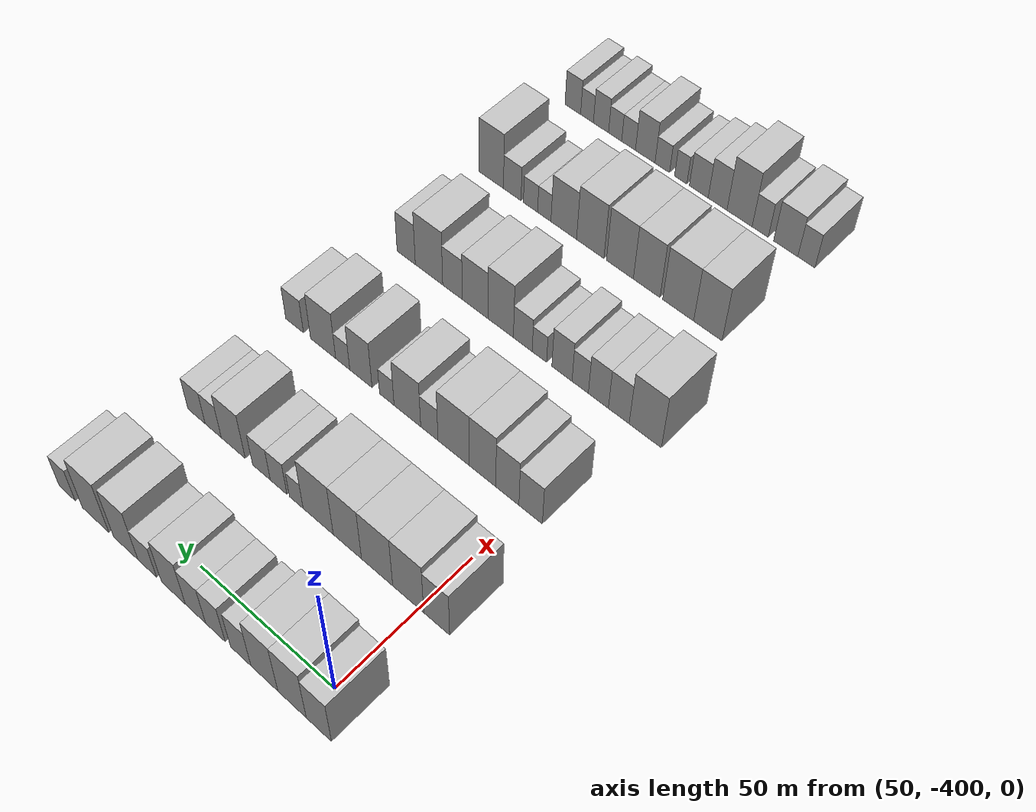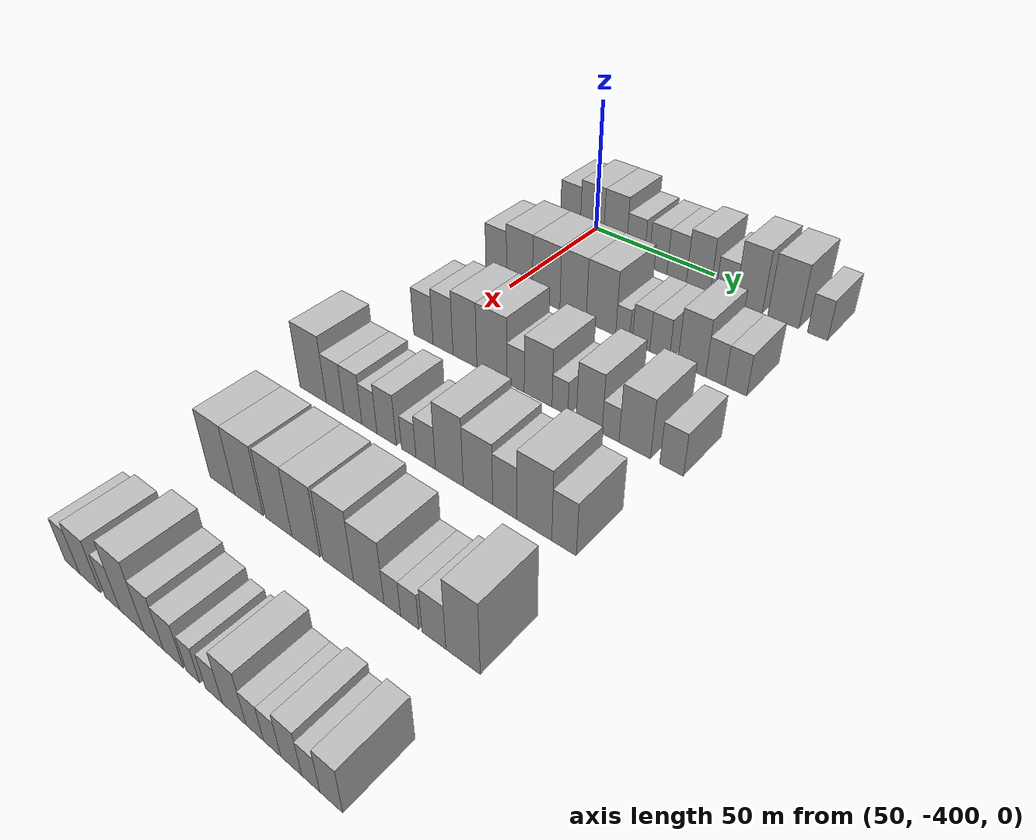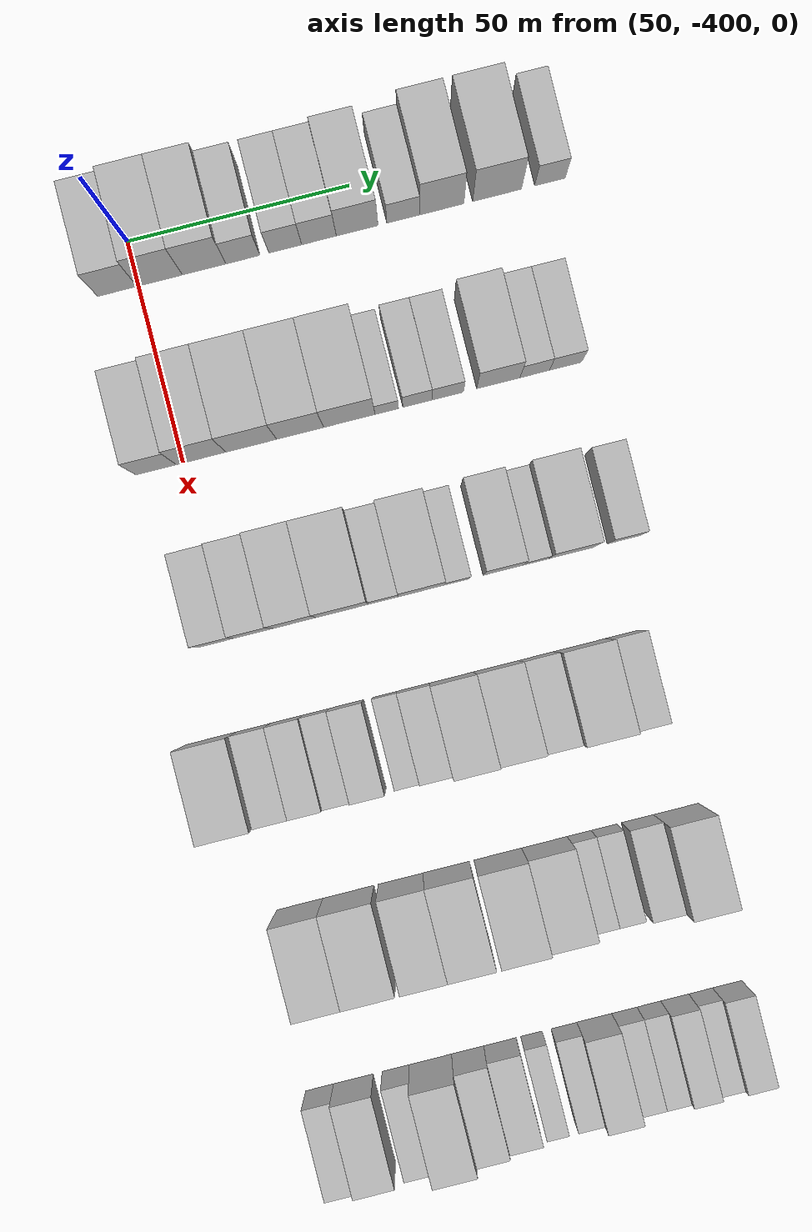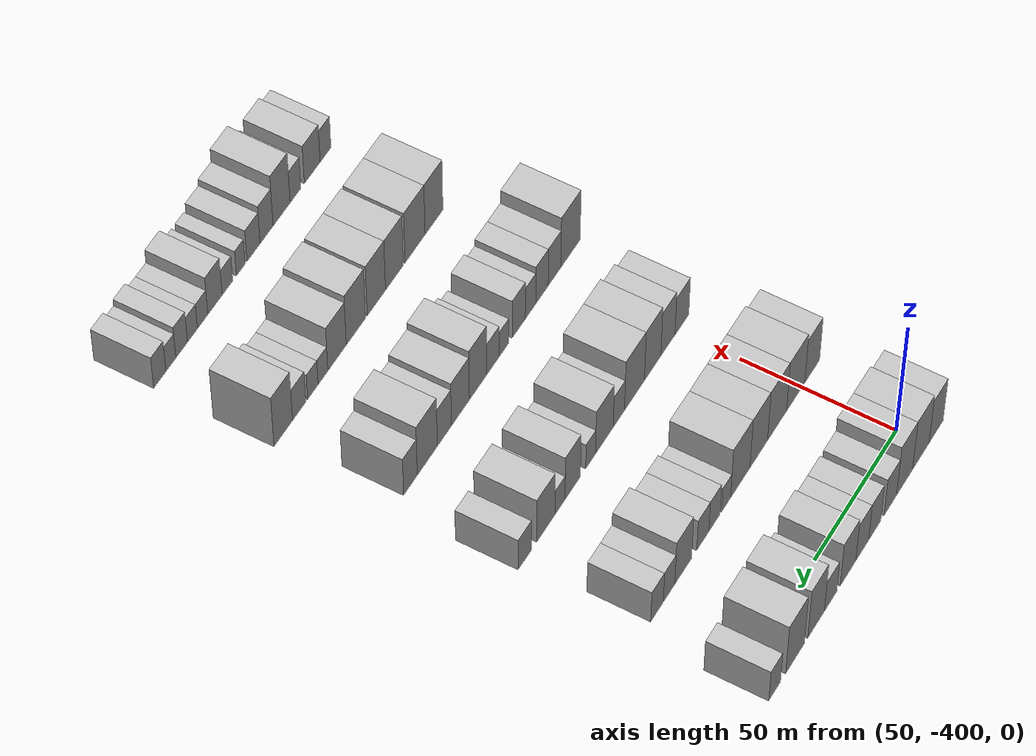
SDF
<sdf version="1.6">
 <world name="default">
  <model name="building_26">
   <static>1</static>
   <pose>50.0000 -404.8417 0 0.000000 0.000000 0.000000</pose>
   <link name="link">
    <pose>0 0 10.50 0 0 0</pose>
    <collision name="collision"><geometry><box><size>20.0000 8.8855 21.0000</size></box></geometry></collision>
    <visual name="visual">
     <cast_shadows>0</cast_shadows>
     <geometry><box><size>20.0000 8.8855 21.0000</size></box></geometry>
     <material>
      <script>
       <uri>model://HANNAS_wall/materials/scripts</uri>
       <uri>model://HANNAS_wall/materials/textures</uri>
       <name>vrc/HANNAS_wall</name>
      </script>
     </material>
    </visual>
   </link>
  </model>
  <model name="building_27">
   <static>1</static>
   <pose>50.0000 -395.2701 0 0.000000 0.000000 0.000000</pose>
   <link name="link">
    <pose>0 0 12.00 0 0 0</pose>
    <collision name="collision"><geometry><box><size>20.0000 10.2577 24.0000</size></box></geometry></collision>
    <visual name="visual">
     <cast_shadows>0</cast_shadows>
     <geometry><box><size>20.0000 10.2577 24.0000</size></box></geometry>
     <material>
      <script>
       <uri>model://HANNAS_wall/materials/scripts</uri>
       <uri>model://HANNAS_wall/materials/textures</uri>
       <name>vrc/HANNAS_wall</name>
      </script>
     </material>
    </visual>
   </link>
  </model>
  <model name="building_28">
   <static>1</static>
   <pose>50.0000 -385.2097 0 0.000000 0.000000 0.000000</pose>
   <link name="link">
    <pose>0 0 12.00 0 0 0</pose>
    <collision name="collision"><geometry><box><size>20.0000 9.8632 24.0000</size></box></geometry></collision>
    <visual name="visual">
     <cast_shadows>0</cast_shadows>
     <geometry><box><size>20.0000 9.8632 24.0000</size></box></geometry>
     <material>
      <script>
       <uri>model://HANNAS_wall/materials/scripts</uri>
       <uri>model://HANNAS_wall/materials/textures</uri>
       <name>vrc/HANNAS_wall</name>
      </script>
     </material>
    </visual>
   </link>
  </model>
  <model name="building_29">
   <static>1</static>
   <pose>50.0000 -376.4399 0 0.000000 0.000000 0.000000</pose>
   <link name="link">
    <pose>0 0 9.00 0 0 0</pose>
    <collision name="collision"><geometry><box><size>20.0000 7.6765 18.0000</size></box></geometry></collision>
    <visual name="visual">
     <cast_shadows>0</cast_shadows>
     <geometry><box><size>20.0000 7.6765 18.0000</size></box></geometry>
     <material>
      <script>
       <uri>model://HANNAS_wall/materials/scripts</uri>
       <uri>model://HANNAS_wall/materials/textures</uri>
       <name>vrc/HANNAS_wall</name>
      </script>
     </material>
    </visual>
   </link>
  </model>
  <model name="building_30">
   <static>1</static>
   <pose>50.0000 -366.8868 0 0.000000 0.000000 0.000000</pose>
   <link name="link">
    <pose>0 0 9.00 0 0 0</pose>
    <collision name="collision"><geometry><box><size>20.0000 7.4297 18.0000</size></box></geometry></collision>
    <visual name="visual">
     <cast_shadows>0</cast_shadows>
     <geometry><box><size>20.0000 7.4297 18.0000</size></box></geometry>
     <material>
      <script>
       <uri>model://HANNAS_wall/materials/scripts</uri>
       <uri>model://HANNAS_wall/materials/textures</uri>
       <name>vrc/HANNAS_wall</name>
      </script>
     </material>
    </visual>
   </link>
  </model>
  <model name="building_31">
   <static>1</static>
   <pose>50.0000 -359.2685 0 0.000000 0.000000 0.000000</pose>
   <link name="link">
    <pose>0 0 9.00 0 0 0</pose>
    <collision name="collision"><geometry><box><size>20.0000 7.8068 18.0000</size></box></geometry></collision>
    <visual name="visual">
     <cast_shadows>0</cast_shadows>
     <geometry><box><size>20.0000 7.8068 18.0000</size></box></geometry>
     <material>
      <script>
       <uri>model://HANNAS_wall/materials/scripts</uri>
       <uri>model://HANNAS_wall/materials/textures</uri>
       <name>vrc/HANNAS_wall</name>
      </script>
     </material>
    </visual>
   </link>
  </model>
  <model name="building_32">
   <static>1</static>
   <pose>50.0000 -350.6555 0 0.000000 0.000000 0.000000</pose>
   <link name="link">
    <pose>0 0 10.50 0 0 0</pose>
    <collision name="collision"><geometry><box><size>20.0000 9.4192 21.0000</size></box></geometry></collision>
    <visual name="visual">
     <cast_shadows>0</cast_shadows>
     <geometry><box><size>20.0000 9.4192 21.0000</size></box></geometry>
     <material>
      <script>
       <uri>model://HANNAS_wall/materials/scripts</uri>
       <uri>model://HANNAS_wall/materials/textures</uri>
       <name>vrc/HANNAS_wall</name>
      </script>
     </material>
    </visual>
   </link>
  </model>
  <model name="building_33">
   <static>1</static>
   <pose>50.0000 -340.2218 0 0.000000 0.000000 0.000000</pose>
   <link name="link">
    <pose>0 0 7.50 0 0 0</pose>
    <collision name="collision"><geometry><box><size>20.0000 7.4481 15.0000</size></box></geometry></collision>
    <visual name="visual">
     <cast_shadows>0</cast_shadows>
     <geometry><box><size>20.0000 7.4481 15.0000</size></box></geometry>
     <material>
      <script>
       <uri>model://HANNAS_wall/materials/scripts</uri>
       <uri>model://HANNAS_wall/materials/textures</uri>
       <name>vrc/HANNAS_wall</name>
      </script>
     </material>
    </visual>
   </link>
  </model>
  <model name="building_34">
   <static>1</static>
   <pose>50.0000 -331.5329 0 0.000000 0.000000 0.000000</pose>
   <link name="link">
    <pose>0 0 12.00 0 0 0</pose>
    <collision name="collision"><geometry><box><size>20.0000 9.9299 24.0000</size></box></geometry></collision>
    <visual name="visual">
     <cast_shadows>0</cast_shadows>
     <geometry><box><size>20.0000 9.9299 24.0000</size></box></geometry>
     <material>
      <script>
       <uri>model://HANNAS_wall/materials/scripts</uri>
       <uri>model://HANNAS_wall/materials/textures</uri>
       <name>vrc/HANNAS_wall</name>
      </script>
     </material>
    </visual>
   </link>
  </model>
  <model name="building_35">
   <static>1</static>
   <pose>50.0000 -319.0540 0 0.000000 0.000000 0.000000</pose>
   <link name="link">
    <pose>0 0 12.00 0 0 0</pose>
    <collision name="collision"><geometry><box><size>20.0000 11.0279 24.0000</size></box></geometry></collision>
    <visual name="visual">
     <cast_shadows>0</cast_shadows>
     <geometry><box><size>20.0000 11.0279 24.0000</size></box></geometry>
     <material>
      <script>
       <uri>model://HANNAS_wall/materials/scripts</uri>
       <uri>model://HANNAS_wall/materials/textures</uri>
       <name>vrc/HANNAS_wall</name>
      </script>
     </material>
    </visual>
   </link>
  </model>
  <model name="building_36">
   <static>1</static>
   <pose>50.0000 -307.1004 0 0.000000 0.000000 0.000000</pose>
   <link name="link">
    <pose>0 0 7.50 0 0 0</pose>
    <collision name="collision"><geometry><box><size>20.0000 6.8793 15.0000</size></box></geometry></collision>
    <visual name="visual">
     <cast_shadows>0</cast_shadows>
     <geometry><box><size>20.0000 6.8793 15.0000</size></box></geometry>
     <material>
      <script>
       <uri>model://HANNAS_wall/materials/scripts</uri>
       <uri>model://HANNAS_wall/materials/textures</uri>
       <name>vrc/HANNAS_wall</name>
      </script>
     </material>
    </visual>
   </link>
  </model>
  <model name="building_161">
   <static>1</static>
   <pose>90.0000 -406.1823 0 0.000000 0.000000 0.000000</pose>
   <link name="link">
    <pose>0 0 10.50 0 0 0</pose>
    <collision name="collision"><geometry><box><size>20.0000 9.1370 21.0000</size></box></geometry></collision>
    <visual name="visual">
     <cast_shadows>0</cast_shadows>
     <geometry><box><size>20.0000 9.1370 21.0000</size></box></geometry>
     <material>
      <script>
       <uri>model://HANNAS_wall/materials/scripts</uri>
       <uri>model://HANNAS_wall/materials/textures</uri>
       <name>vrc/HANNAS_wall</name>
      </script>
     </material>
    </visual>
   </link>
  </model>
  <model name="building_162">
   <static>1</static>
   <pose>90.0000 -396.0306 0 0.000000 0.000000 0.000000</pose>
   <link name="link">
    <pose>0 0 12.00 0 0 0</pose>
    <collision name="collision"><geometry><box><size>20.0000 11.1663 24.0000</size></box></geometry></collision>
    <visual name="visual">
     <cast_shadows>0</cast_shadows>
     <geometry><box><size>20.0000 11.1663 24.0000</size></box></geometry>
     <material>
      <script>
       <uri>model://HANNAS_wall/materials/scripts</uri>
       <uri>model://HANNAS_wall/materials/textures</uri>
       <name>vrc/HANNAS_wall</name>
      </script>
     </material>
    </visual>
   </link>
  </model>
  <model name="building_163">
   <static>1</static>
   <pose>90.0000 -384.7012 0 0.000000 0.000000 0.000000</pose>
   <link name="link">
    <pose>0 0 12.00 0 0 0</pose>
    <collision name="collision"><geometry><box><size>20.0000 11.4925 24.0000</size></box></geometry></collision>
    <visual name="visual">
     <cast_shadows>0</cast_shadows>
     <geometry><box><size>20.0000 11.4925 24.0000</size></box></geometry>
     <material>
      <script>
       <uri>model://HANNAS_wall/materials/scripts</uri>
       <uri>model://HANNAS_wall/materials/textures</uri>
       <name>vrc/HANNAS_wall</name>
      </script>
     </material>
    </visual>
   </link>
  </model>
  <model name="building_164">
   <static>1</static>
   <pose>90.0000 -373.6476 0 0.000000 0.000000 0.000000</pose>
   <link name="link">
    <pose>0 0 12.00 0 0 0</pose>
    <collision name="collision"><geometry><box><size>20.0000 10.6148 24.0000</size></box></geometry></collision>
    <visual name="visual">
     <cast_shadows>0</cast_shadows>
     <geometry><box><size>20.0000 10.6148 24.0000</size></box></geometry>
     <material>
      <script>
       <uri>model://HANNAS_wall/materials/scripts</uri>
       <uri>model://HANNAS_wall/materials/textures</uri>
       <name>vrc/HANNAS_wall</name>
      </script>
     </material>
    </visual>
   </link>
  </model>
  <model name="building_165">
   <static>1</static>
   <pose>90.0000 -362.5459 0 0.000000 0.000000 0.000000</pose>
   <link name="link">
    <pose>0 0 12.00 0 0 0</pose>
    <collision name="collision"><geometry><box><size>20.0000 11.5886 24.0000</size></box></geometry></collision>
    <visual name="visual">
     <cast_shadows>0</cast_shadows>
     <geometry><box><size>20.0000 11.5886 24.0000</size></box></geometry>
     <material>
      <script>
       <uri>model://HANNAS_wall/materials/scripts</uri>
       <uri>model://HANNAS_wall/materials/textures</uri>
       <name>vrc/HANNAS_wall</name>
      </script>
     </material>
    </visual>
   </link>
  </model>
  <model name="building_166">
   <static>1</static>
   <pose>90.0000 -354.1020 0 0.000000 0.000000 0.000000</pose>
   <link name="link">
    <pose>0 0 6.00 0 0 0</pose>
    <collision name="collision"><geometry><box><size>20.0000 5.2992 12.0000</size></box></geometry></collision>
    <visual name="visual">
     <cast_shadows>0</cast_shadows>
     <geometry><box><size>20.0000 5.2992 12.0000</size></box></geometry>
     <material>
      <script>
       <uri>model://HANNAS_wall/materials/scripts</uri>
       <uri>model://HANNAS_wall/materials/textures</uri>
       <name>vrc/HANNAS_wall</name>
      </script>
     </material>
    </visual>
   </link>
  </model>
  <model name="building_167">
   <static>1</static>
   <pose>90.0000 -347.1796 0 0.000000 0.000000 0.000000</pose>
   <link name="link">
    <pose>0 0 7.50 0 0 0</pose>
    <collision name="collision"><geometry><box><size>20.0000 6.5456 15.0000</size></box></geometry></collision>
    <visual name="visual">
     <cast_shadows>0</cast_shadows>
     <geometry><box><size>20.0000 6.5456 15.0000</size></box></geometry>
     <material>
      <script>
       <uri>model://HANNAS_wall/materials/scripts</uri>
       <uri>model://HANNAS_wall/materials/textures</uri>
       <name>vrc/HANNAS_wall</name>
      </script>
     </material>
    </visual>
   </link>
  </model>
  <model name="building_168">
   <static>1</static>
   <pose>90.0000 -340.3472 0 0.000000 0.000000 0.000000</pose>
   <link name="link">
    <pose>0 0 7.50 0 0 0</pose>
    <collision name="collision"><geometry><box><size>20.0000 7.1191 15.0000</size></box></geometry></collision>
    <visual name="visual">
     <cast_shadows>0</cast_shadows>
     <geometry><box><size>20.0000 7.1191 15.0000</size></box></geometry>
     <material>
      <script>
       <uri>model://HANNAS_wall/materials/scripts</uri>
       <uri>model://HANNAS_wall/materials/textures</uri>
       <name>vrc/HANNAS_wall</name>
      </script>
     </material>
    </visual>
   </link>
  </model>
  <model name="building_169">
   <static>1</static>
   <pose>90.0000 -328.9032 0 0.000000 0.000000 0.000000</pose>
   <link name="link">
    <pose>0 0 10.50 0 0 0</pose>
    <collision name="collision"><geometry><box><size>20.0000 9.7690 21.0000</size></box></geometry></collision>
    <visual name="visual">
     <cast_shadows>0</cast_shadows>
     <geometry><box><size>20.0000 9.7690 21.0000</size></box></geometry>
     <material>
      <script>
       <uri>model://HANNAS_wall/materials/scripts</uri>
       <uri>model://HANNAS_wall/materials/textures</uri>
       <name>vrc/HANNAS_wall</name>
      </script>
     </material>
    </visual>
   </link>
  </model>
  <model name="building_170">
   <static>1</static>
   <pose>90.0000 -320.6958 0 0.000000 0.000000 0.000000</pose>
   <link name="link">
    <pose>0 0 7.50 0 0 0</pose>
    <collision name="collision"><geometry><box><size>20.0000 6.6457 15.0000</size></box></geometry></collision>
    <visual name="visual">
     <cast_shadows>0</cast_shadows>
     <geometry><box><size>20.0000 6.6457 15.0000</size></box></geometry>
     <material>
      <script>
       <uri>model://HANNAS_wall/materials/scripts</uri>
       <uri>model://HANNAS_wall/materials/textures</uri>
       <name>vrc/HANNAS_wall</name>
      </script>
     </material>
    </visual>
   </link>
  </model>
  <model name="building_171">
   <static>1</static>
   <pose>90.0000 -313.7390 0 0.000000 0.000000 0.000000</pose>
   <link name="link">
    <pose>0 0 7.50 0 0 0</pose>
    <collision name="collision"><geometry><box><size>20.0000 7.2680 15.0000</size></box></geometry></collision>
    <visual name="visual">
     <cast_shadows>0</cast_shadows>
     <geometry><box><size>20.0000 7.2680 15.0000</size></box></geometry>
     <material>
      <script>
       <uri>model://HANNAS_wall/materials/scripts</uri>
       <uri>model://HANNAS_wall/materials/textures</uri>
       <name>vrc/HANNAS_wall</name>
      </script>
     </material>
    </visual>
   </link>
  </model>
  <model name="building_300">
   <static>1</static>
   <pose>130.0000 -402.3187 0 0.000000 0.000000 0.000000</pose>
   <link name="link">
    <pose>0 0 9.00 0 0 0</pose>
    <collision name="collision"><geometry><box><size>20.0000 8.3809 18.0000</size></box></geometry></collision>
    <visual name="visual">
     <cast_shadows>0</cast_shadows>
     <geometry><box><size>20.0000 8.3809 18.0000</size></box></geometry>
     <material>
      <script>
       <uri>model://HANNAS_wall/materials/scripts</uri>
       <uri>model://HANNAS_wall/materials/textures</uri>
       <name>vrc/HANNAS_wall</name>
      </script>
     </material>
    </visual>
   </link>
  </model>
  <model name="building_301">
   <static>1</static>
   <pose>130.0000 -393.9190 0 0.000000 0.000000 0.000000</pose>
   <link name="link">
    <pose>0 0 10.50 0 0 0</pose>
    <collision name="collision"><geometry><box><size>20.0000 8.4185 21.0000</size></box></geometry></collision>
    <visual name="visual">
     <cast_shadows>0</cast_shadows>
     <geometry><box><size>20.0000 8.4185 21.0000</size></box></geometry>
     <material>
      <script>
       <uri>model://HANNAS_wall/materials/scripts</uri>
       <uri>model://HANNAS_wall/materials/textures</uri>
       <name>vrc/HANNAS_wall</name>
      </script>
     </material>
    </visual>
   </link>
  </model>
  <model name="building_302">
   <static>1</static>
   <pose>130.0000 -384.8241 0 0.000000 0.000000 0.000000</pose>
   <link name="link">
    <pose>0 0 12.00 0 0 0</pose>
    <collision name="collision"><geometry><box><size>20.0000 9.7714 24.0000</size></box></geometry></collision>
    <visual name="visual">
     <cast_shadows>0</cast_shadows>
     <geometry><box><size>20.0000 9.7714 24.0000</size></box></geometry>
     <material>
      <script>
       <uri>model://HANNAS_wall/materials/scripts</uri>
       <uri>model://HANNAS_wall/materials/textures</uri>
       <name>vrc/HANNAS_wall</name>
      </script>
     </material>
    </visual>
   </link>
  </model>
  <model name="building_303">
   <static>1</static>
   <pose>130.0000 -374.0486 0 0.000000 0.000000 0.000000</pose>
   <link name="link">
    <pose>0 0 12.00 0 0 0</pose>
    <collision name="collision"><geometry><box><size>20.0000 11.7796 24.0000</size></box></geometry></collision>
    <visual name="visual">
     <cast_shadows>0</cast_shadows>
     <geometry><box><size>20.0000 11.7796 24.0000</size></box></geometry>
     <material>
      <script>
       <uri>model://HANNAS_wall/materials/scripts</uri>
       <uri>model://HANNAS_wall/materials/textures</uri>
       <name>vrc/HANNAS_wall</name>
      </script>
     </material>
    </visual>
   </link>
  </model>
  <model name="building_304">
   <static>1</static>
   <pose>130.0000 -364.8511 0 0.000000 0.000000 0.000000</pose>
   <link name="link">
    <pose>0 0 7.50 0 0 0</pose>
    <collision name="collision"><geometry><box><size>20.0000 6.6154 15.0000</size></box></geometry></collision>
    <visual name="visual">
     <cast_shadows>0</cast_shadows>
     <geometry><box><size>20.0000 6.6154 15.0000</size></box></geometry>
     <material>
      <script>
       <uri>model://HANNAS_wall/materials/scripts</uri>
       <uri>model://HANNAS_wall/materials/textures</uri>
       <name>vrc/HANNAS_wall</name>
      </script>
     </material>
    </visual>
   </link>
  </model>
  <model name="building_305">
   <static>1</static>
   <pose>130.0000 -356.3649 0 0.000000 0.000000 0.000000</pose>
   <link name="link">
    <pose>0 0 10.50 0 0 0</pose>
    <collision name="collision"><geometry><box><size>20.0000 10.3570 21.0000</size></box></geometry></collision>
    <visual name="visual">
     <cast_shadows>0</cast_shadows>
     <geometry><box><size>20.0000 10.3570 21.0000</size></box></geometry>
     <material>
      <script>
       <uri>model://HANNAS_wall/materials/scripts</uri>
       <uri>model://HANNAS_wall/materials/textures</uri>
       <name>vrc/HANNAS_wall</name>
      </script>
     </material>
    </visual>
   </link>
  </model>
  <model name="building_306">
   <static>1</static>
   <pose>130.0000 -348.3262 0 0.000000 0.000000 0.000000</pose>
   <link name="link">
    <pose>0 0 6.00 0 0 0</pose>
    <collision name="collision"><geometry><box><size>20.0000 5.7205 12.0000</size></box></geometry></collision>
    <visual name="visual">
     <cast_shadows>0</cast_shadows>
     <geometry><box><size>20.0000 5.7205 12.0000</size></box></geometry>
     <material>
      <script>
       <uri>model://HANNAS_wall/materials/scripts</uri>
       <uri>model://HANNAS_wall/materials/textures</uri>
       <name>vrc/HANNAS_wall</name>
      </script>
     </material>
    </visual>
   </link>
  </model>
  <model name="building_307">
   <static>1</static>
   <pose>130.0000 -337.9815 0 0.000000 0.000000 0.000000</pose>
   <link name="link">
    <pose>0 0 10.50 0 0 0</pose>
    <collision name="collision"><geometry><box><size>20.0000 8.9689 21.0000</size></box></geometry></collision>
    <visual name="visual">
     <cast_shadows>0</cast_shadows>
     <geometry><box><size>20.0000 8.9689 21.0000</size></box></geometry>
     <material>
      <script>
       <uri>model://HANNAS_wall/materials/scripts</uri>
       <uri>model://HANNAS_wall/materials/textures</uri>
       <name>vrc/HANNAS_wall</name>
      </script>
     </material>
    </visual>
   </link>
  </model>
  <model name="building_308">
   <static>1</static>
   <pose>130.0000 -330.6240 0 0.000000 0.000000 0.000000</pose>
   <link name="link">
    <pose>0 0 6.00 0 0 0</pose>
    <collision name="collision"><geometry><box><size>20.0000 5.7462 12.0000</size></box></geometry></collision>
    <visual name="visual">
     <cast_shadows>0</cast_shadows>
     <geometry><box><size>20.0000 5.7462 12.0000</size></box></geometry>
     <material>
      <script>
       <uri>model://HANNAS_wall/materials/scripts</uri>
       <uri>model://HANNAS_wall/materials/textures</uri>
       <name>vrc/HANNAS_wall</name>
      </script>
     </material>
    </visual>
   </link>
  </model>
  <model name="building_309">
   <static>1</static>
   <pose>130.0000 -322.5766 0 0.000000 0.000000 0.000000</pose>
   <link name="link">
    <pose>0 0 10.50 0 0 0</pose>
    <collision name="collision"><geometry><box><size>20.0000 10.3486 21.0000</size></box></geometry></collision>
    <visual name="visual">
     <cast_shadows>0</cast_shadows>
     <geometry><box><size>20.0000 10.3486 21.0000</size></box></geometry>
     <material>
      <script>
       <uri>model://HANNAS_wall/materials/scripts</uri>
       <uri>model://HANNAS_wall/materials/textures</uri>
       <name>vrc/HANNAS_wall</name>
      </script>
     </material>
    </visual>
   </link>
  </model>
  <model name="building_310">
   <static>1</static>
   <pose>130.0000 -310.6839 0 0.000000 0.000000 0.000000</pose>
   <link name="link">
    <pose>0 0 7.50 0 0 0</pose>
    <collision name="collision"><geometry><box><size>20.0000 7.4368 15.0000</size></box></geometry></collision>
    <visual name="visual">
     <cast_shadows>0</cast_shadows>
     <geometry><box><size>20.0000 7.4368 15.0000</size></box></geometry>
     <material>
      <script>
       <uri>model://HANNAS_wall/materials/scripts</uri>
       <uri>model://HANNAS_wall/materials/textures</uri>
       <name>vrc/HANNAS_wall</name>
      </script>
     </material>
    </visual>
   </link>
  </model>
  <model name="building_434">
   <static>1</static>
   <pose>170.0000 -408.7269 0 0.000000 0.000000 0.000000</pose>
   <link name="link">
    <pose>0 0 12.00 0 0 0</pose>
    <collision name="collision"><geometry><box><size>20.0000 11.5015 24.0000</size></box></geometry></collision>
    <visual name="visual">
     <cast_shadows>0</cast_shadows>
     <geometry><box><size>20.0000 11.5015 24.0000</size></box></geometry>
     <material>
      <script>
       <uri>model://HANNAS_wall/materials/scripts</uri>
       <uri>model://HANNAS_wall/materials/textures</uri>
       <name>vrc/HANNAS_wall</name>
      </script>
     </material>
    </visual>
   </link>
  </model>
  <model name="building_435">
   <static>1</static>
   <pose>170.0000 -399.2082 0 0.000000 0.000000 0.000000</pose>
   <link name="link">
    <pose>0 0 9.00 0 0 0</pose>
    <collision name="collision"><geometry><box><size>20.0000 7.5360 18.0000</size></box></geometry></collision>
    <visual name="visual">
     <cast_shadows>0</cast_shadows>
     <geometry><box><size>20.0000 7.5360 18.0000</size></box></geometry>
     <material>
      <script>
       <uri>model://HANNAS_wall/materials/scripts</uri>
       <uri>model://HANNAS_wall/materials/textures</uri>
       <name>vrc/HANNAS_wall</name>
      </script>
     </material>
    </visual>
   </link>
  </model>
  <model name="building_436">
   <static>1</static>
   <pose>170.0000 -391.7697 0 0.000000 0.000000 0.000000</pose>
   <link name="link">
    <pose>0 0 9.00 0 0 0</pose>
    <collision name="collision"><geometry><box><size>20.0000 7.3410 18.0000</size></box></geometry></collision>
    <visual name="visual">
     <cast_shadows>0</cast_shadows>
     <geometry><box><size>20.0000 7.3410 18.0000</size></box></geometry>
     <material>
      <script>
       <uri>model://HANNAS_wall/materials/scripts</uri>
       <uri>model://HANNAS_wall/materials/textures</uri>
       <name>vrc/HANNAS_wall</name>
      </script>
     </material>
    </visual>
   </link>
  </model>
  <model name="building_437">
   <static>1</static>
   <pose>170.0000 -385.0682 0 0.000000 0.000000 0.000000</pose>
   <link name="link">
    <pose>0 0 7.50 0 0 0</pose>
    <collision name="collision"><geometry><box><size>20.0000 6.0620 15.0000</size></box></geometry></collision>
    <visual name="visual">
     <cast_shadows>0</cast_shadows>
     <geometry><box><size>20.0000 6.0620 15.0000</size></box></geometry>
     <material>
      <script>
       <uri>model://HANNAS_wall/materials/scripts</uri>
       <uri>model://HANNAS_wall/materials/textures</uri>
       <name>vrc/HANNAS_wall</name>
      </script>
     </material>
    </visual>
   </link>
  </model>
  <model name="building_438">
   <static>1</static>
   <pose>170.0000 -378.2490 0 0.000000 0.000000 0.000000</pose>
   <link name="link">
    <pose>0 0 9.00 0 0 0</pose>
    <collision name="collision"><geometry><box><size>20.0000 7.5763 18.0000</size></box></geometry></collision>
    <visual name="visual">
     <cast_shadows>0</cast_shadows>
     <geometry><box><size>20.0000 7.5763 18.0000</size></box></geometry>
     <material>
      <script>
       <uri>model://HANNAS_wall/materials/scripts</uri>
       <uri>model://HANNAS_wall/materials/textures</uri>
       <name>vrc/HANNAS_wall</name>
      </script>
     </material>
    </visual>
   </link>
  </model>
  <model name="building_439">
   <static>1</static>
   <pose>170.0000 -369.7162 0 0.000000 0.000000 0.000000</pose>
   <link name="link">
    <pose>0 0 6.00 0 0 0</pose>
    <collision name="collision"><geometry><box><size>20.0000 5.4893 12.0000</size></box></geometry></collision>
    <visual name="visual">
     <cast_shadows>0</cast_shadows>
     <geometry><box><size>20.0000 5.4893 12.0000</size></box></geometry>
     <material>
      <script>
       <uri>model://HANNAS_wall/materials/scripts</uri>
       <uri>model://HANNAS_wall/materials/textures</uri>
       <name>vrc/HANNAS_wall</name>
      </script>
     </material>
    </visual>
   </link>
  </model>
  <model name="building_440">
   <static>1</static>
   <pose>170.0000 -363.3420 0 0.000000 0.000000 0.000000</pose>
   <link name="link">
    <pose>0 0 7.50 0 0 0</pose>
    <collision name="collision"><geometry><box><size>20.0000 7.2592 15.0000</size></box></geometry></collision>
    <visual name="visual">
     <cast_shadows>0</cast_shadows>
     <geometry><box><size>20.0000 7.2592 15.0000</size></box></geometry>
     <material>
      <script>
       <uri>model://HANNAS_wall/materials/scripts</uri>
       <uri>model://HANNAS_wall/materials/textures</uri>
       <name>vrc/HANNAS_wall</name>
      </script>
     </material>
    </visual>
   </link>
  </model>
  <model name="building_441">
   <static>1</static>
   <pose>170.0000 -354.7103 0 0.000000 0.000000 0.000000</pose>
   <link name="link">
    <pose>0 0 12.00 0 0 0</pose>
    <collision name="collision"><geometry><box><size>20.0000 10.0042 24.0000</size></box></geometry></collision>
    <visual name="visual">
     <cast_shadows>0</cast_shadows>
     <geometry><box><size>20.0000 10.0042 24.0000</size></box></geometry>
     <material>
      <script>
       <uri>model://HANNAS_wall/materials/scripts</uri>
       <uri>model://HANNAS_wall/materials/textures</uri>
       <name>vrc/HANNAS_wall</name>
      </script>
     </material>
    </visual>
   </link>
  </model>
  <model name="building_442">
   <static>1</static>
   <pose>170.0000 -344.6107 0 0.000000 0.000000 0.000000</pose>
   <link name="link">
    <pose>0 0 10.50 0 0 0</pose>
    <collision name="collision"><geometry><box><size>20.0000 10.1948 21.0000</size></box></geometry></collision>
    <visual name="visual">
     <cast_shadows>0</cast_shadows>
     <geometry><box><size>20.0000 10.1948 21.0000</size></box></geometry>
     <material>
      <script>
       <uri>model://HANNAS_wall/materials/scripts</uri>
       <uri>model://HANNAS_wall/materials/textures</uri>
       <name>vrc/HANNAS_wall</name>
      </script>
     </material>
    </visual>
   </link>
  </model>
  <model name="building_443">
   <static>1</static>
   <pose>170.0000 -335.5487 0 0.000000 0.000000 0.000000</pose>
   <link name="link">
    <pose>0 0 9.00 0 0 0</pose>
    <collision name="collision"><geometry><box><size>20.0000 7.9292 18.0000</size></box></geometry></collision>
    <visual name="visual">
     <cast_shadows>0</cast_shadows>
     <geometry><box><size>20.0000 7.9292 18.0000</size></box></geometry>
     <material>
      <script>
       <uri>model://HANNAS_wall/materials/scripts</uri>
       <uri>model://HANNAS_wall/materials/textures</uri>
       <name>vrc/HANNAS_wall</name>
      </script>
     </material>
    </visual>
   </link>
  </model>
  <model name="building_444">
   <static>1</static>
   <pose>170.0000 -325.9478 0 0.000000 0.000000 0.000000</pose>
   <link name="link">
    <pose>0 0 12.00 0 0 0</pose>
    <collision name="collision"><geometry><box><size>20.0000 11.2727 24.0000</size></box></geometry></collision>
    <visual name="visual">
     <cast_shadows>0</cast_shadows>
     <geometry><box><size>20.0000 11.2727 24.0000</size></box></geometry>
     <material>
      <script>
       <uri>model://HANNAS_wall/materials/scripts</uri>
       <uri>model://HANNAS_wall/materials/textures</uri>
       <name>vrc/HANNAS_wall</name>
      </script>
     </material>
    </visual>
   </link>
  </model>
  <model name="building_445">
   <static>1</static>
   <pose>170.0000 -316.5084 0 0.000000 0.000000 0.000000</pose>
   <link name="link">
    <pose>0 0 9.00 0 0 0</pose>
    <collision name="collision"><geometry><box><size>20.0000 7.6060 18.0000</size></box></geometry></collision>
    <visual name="visual">
     <cast_shadows>0</cast_shadows>
     <geometry><box><size>20.0000 7.6060 18.0000</size></box></geometry>
     <material>
      <script>
       <uri>model://HANNAS_wall/materials/scripts</uri>
       <uri>model://HANNAS_wall/materials/textures</uri>
       <name>vrc/HANNAS_wall</name>
      </script>
     </material>
    </visual>
   </link>
  </model>
  <model name="building_572">
   <static>1</static>
   <pose>210.0000 -399.0436 0 0.000000 0.000000 0.000000</pose>
   <link name="link">
    <pose>0 0 12.00 0 0 0</pose>
    <collision name="collision"><geometry><box><size>20.0000 10.3990 24.0000</size></box></geometry></collision>
    <visual name="visual">
     <cast_shadows>0</cast_shadows>
     <geometry><box><size>20.0000 10.3990 24.0000</size></box></geometry>
     <material>
      <script>
       <uri>model://HANNAS_wall/materials/scripts</uri>
       <uri>model://HANNAS_wall/materials/textures</uri>
       <name>vrc/HANNAS_wall</name>
      </script>
     </material>
    </visual>
   </link>
  </model>
  <model name="building_573">
   <static>1</static>
   <pose>210.0000 -388.0737 0 0.000000 0.000000 0.000000</pose>
   <link name="link">
    <pose>0 0 12.00 0 0 0</pose>
    <collision name="collision"><geometry><box><size>20.0000 11.5408 24.0000</size></box></geometry></collision>
    <visual name="visual">
     <cast_shadows>0</cast_shadows>
     <geometry><box><size>20.0000 11.5408 24.0000</size></box></geometry>
     <material>
      <script>
       <uri>model://HANNAS_wall/materials/scripts</uri>
       <uri>model://HANNAS_wall/materials/textures</uri>
       <name>vrc/HANNAS_wall</name>
      </script>
     </material>
    </visual>
   </link>
  </model>
  <model name="building_574">
   <static>1</static>
   <pose>210.0000 -376.2275 0 0.000000 0.000000 0.000000</pose>
   <link name="link">
    <pose>0 0 12.00 0 0 0</pose>
    <collision name="collision"><geometry><box><size>20.0000 10.1515 24.0000</size></box></geometry></collision>
    <visual name="visual">
     <cast_shadows>0</cast_shadows>
     <geometry><box><size>20.0000 10.1515 24.0000</size></box></geometry>
     <material>
      <script>
       <uri>model://HANNAS_wall/materials/scripts</uri>
       <uri>model://HANNAS_wall/materials/textures</uri>
       <name>vrc/HANNAS_wall</name>
      </script>
     </material>
    </visual>
   </link>
  </model>
  <model name="building_575">
   <static>1</static>
   <pose>210.0000 -365.9489 0 0.000000 0.000000 0.000000</pose>
   <link name="link">
    <pose>0 0 12.00 0 0 0</pose>
    <collision name="collision"><geometry><box><size>20.0000 10.4058 24.0000</size></box></geometry></collision>
    <visual name="visual">
     <cast_shadows>0</cast_shadows>
     <geometry><box><size>20.0000 10.4058 24.0000</size></box></geometry>
     <material>
      <script>
       <uri>model://HANNAS_wall/materials/scripts</uri>
       <uri>model://HANNAS_wall/materials/textures</uri>
       <name>vrc/HANNAS_wall</name>
      </script>
     </material>
    </visual>
   </link>
  </model>
  <model name="building_576">
   <static>1</static>
   <pose>210.0000 -354.3503 0 0.000000 0.000000 0.000000</pose>
   <link name="link">
    <pose>0 0 12.00 0 0 0</pose>
    <collision name="collision"><geometry><box><size>20.0000 10.7914 24.0000</size></box></geometry></collision>
    <visual name="visual">
     <cast_shadows>0</cast_shadows>
     <geometry><box><size>20.0000 10.7914 24.0000</size></box></geometry>
     <material>
      <script>
       <uri>model://HANNAS_wall/materials/scripts</uri>
       <uri>model://HANNAS_wall/materials/textures</uri>
       <name>vrc/HANNAS_wall</name>
      </script>
     </material>
    </visual>
   </link>
  </model>
  <model name="building_577">
   <static>1</static>
   <pose>210.0000 -343.8099 0 0.000000 0.000000 0.000000</pose>
   <link name="link">
    <pose>0 0 10.50 0 0 0</pose>
    <collision name="collision"><geometry><box><size>20.0000 10.2896 21.0000</size></box></geometry></collision>
    <visual name="visual">
     <cast_shadows>0</cast_shadows>
     <geometry><box><size>20.0000 10.2896 21.0000</size></box></geometry>
     <material>
      <script>
       <uri>model://HANNAS_wall/materials/scripts</uri>
       <uri>model://HANNAS_wall/materials/textures</uri>
       <name>vrc/HANNAS_wall</name>
      </script>
     </material>
    </visual>
   </link>
  </model>
  <model name="building_578">
   <static>1</static>
   <pose>210.0000 -335.9582 0 0.000000 0.000000 0.000000</pose>
   <link name="link">
    <pose>0 0 6.00 0 0 0</pose>
    <collision name="collision"><geometry><box><size>20.0000 5.4137 12.0000</size></box></geometry></collision>
    <visual name="visual">
     <cast_shadows>0</cast_shadows>
     <geometry><box><size>20.0000 5.4137 12.0000</size></box></geometry>
     <material>
      <script>
       <uri>model://HANNAS_wall/materials/scripts</uri>
       <uri>model://HANNAS_wall/materials/textures</uri>
       <name>vrc/HANNAS_wall</name>
      </script>
     </material>
    </visual>
   </link>
  </model>
  <model name="building_579">
   <static>1</static>
   <pose>210.0000 -330.3381 0 0.000000 0.000000 0.000000</pose>
   <link name="link">
    <pose>0 0 6.00 0 0 0</pose>
    <collision name="collision"><geometry><box><size>20.0000 5.8265 12.0000</size></box></geometry></collision>
    <visual name="visual">
     <cast_shadows>0</cast_shadows>
     <geometry><box><size>20.0000 5.8265 12.0000</size></box></geometry>
     <material>
      <script>
       <uri>model://HANNAS_wall/materials/scripts</uri>
       <uri>model://HANNAS_wall/materials/textures</uri>
       <name>vrc/HANNAS_wall</name>
      </script>
     </material>
    </visual>
   </link>
  </model>
  <model name="building_580">
   <static>1</static>
   <pose>210.0000 -322.7778 0 0.000000 0.000000 0.000000</pose>
   <link name="link">
    <pose>0 0 7.50 0 0 0</pose>
    <collision name="collision"><geometry><box><size>20.0000 7.2941 15.0000</size></box></geometry></collision>
    <visual name="visual">
     <cast_shadows>0</cast_shadows>
     <geometry><box><size>20.0000 7.2941 15.0000</size></box></geometry>
     <material>
      <script>
       <uri>model://HANNAS_wall/materials/scripts</uri>
       <uri>model://HANNAS_wall/materials/textures</uri>
       <name>vrc/HANNAS_wall</name>
      </script>
     </material>
    </visual>
   </link>
  </model>
  <model name="building_581">
   <static>1</static>
   <pose>210.0000 -314.0480 0 0.000000 0.000000 0.000000</pose>
   <link name="link">
    <pose>0 0 12.00 0 0 0</pose>
    <collision name="collision"><geometry><box><size>20.0000 10.1655 24.0000</size></box></geometry></collision>
    <visual name="visual">
     <cast_shadows>0</cast_shadows>
     <geometry><box><size>20.0000 10.1655 24.0000</size></box></geometry>
     <material>
      <script>
       <uri>model://HANNAS_wall/materials/scripts</uri>
       <uri>model://HANNAS_wall/materials/textures</uri>
       <name>vrc/HANNAS_wall</name>
      </script>
     </material>
    </visual>
   </link>
  </model>
  <model name="building_713">
   <static>1</static>
   <pose>250.0000 -404.7149 0 0.000000 0.000000 0.000000</pose>
   <link name="link">
    <pose>0 0 7.50 0 0 0</pose>
    <collision name="collision"><geometry><box><size>20.0000 6.2585 15.0000</size></box></geometry></collision>
    <visual name="visual">
     <cast_shadows>0</cast_shadows>
     <geometry><box><size>20.0000 6.2585 15.0000</size></box></geometry>
     <material>
      <script>
       <uri>model://HANNAS_wall/materials/scripts</uri>
       <uri>model://HANNAS_wall/materials/textures</uri>
       <name>vrc/HANNAS_wall</name>
      </script>
     </material>
    </visual>
   </link>
  </model>
  <model name="building_714">
   <static>1</static>
   <pose>250.0000 -397.0939 0 0.000000 0.000000 0.000000</pose>
   <link name="link">
    <pose>0 0 9.00 0 0 0</pose>
    <collision name="collision"><geometry><box><size>20.0000 8.9833 18.0000</size></box></geometry></collision>
    <visual name="visual">
     <cast_shadows>0</cast_shadows>
     <geometry><box><size>20.0000 8.9833 18.0000</size></box></geometry>
     <material>
      <script>
       <uri>model://HANNAS_wall/materials/scripts</uri>
       <uri>model://HANNAS_wall/materials/textures</uri>
       <name>vrc/HANNAS_wall</name>
      </script>
     </material>
    </visual>
   </link>
  </model>
  <model name="building_715">
   <static>1</static>
   <pose>250.0000 -387.5681 0 0.000000 0.000000 0.000000</pose>
   <link name="link">
    <pose>0 0 7.50 0 0 0</pose>
    <collision name="collision"><geometry><box><size>20.0000 6.0684 15.0000</size></box></geometry></collision>
    <visual name="visual">
     <cast_shadows>0</cast_shadows>
     <geometry><box><size>20.0000 6.0684 15.0000</size></box></geometry>
     <material>
      <script>
       <uri>model://HANNAS_wall/materials/scripts</uri>
       <uri>model://HANNAS_wall/materials/textures</uri>
       <name>vrc/HANNAS_wall</name>
      </script>
     </material>
    </visual>
   </link>
  </model>
  <model name="building_716">
   <static>1</static>
   <pose>250.0000 -379.7207 0 0.000000 0.000000 0.000000</pose>
   <link name="link">
    <pose>0 0 12.00 0 0 0</pose>
    <collision name="collision"><geometry><box><size>20.0000 9.6262 24.0000</size></box></geometry></collision>
    <visual name="visual">
     <cast_shadows>0</cast_shadows>
     <geometry><box><size>20.0000 9.6262 24.0000</size></box></geometry>
     <material>
      <script>
       <uri>model://HANNAS_wall/materials/scripts</uri>
       <uri>model://HANNAS_wall/materials/textures</uri>
       <name>vrc/HANNAS_wall</name>
      </script>
     </material>
    </visual>
   </link>
  </model>
  <model name="building_717">
   <static>1</static>
   <pose>250.0000 -371.2712 0 0.000000 0.000000 0.000000</pose>
   <link name="link">
    <pose>0 0 9.00 0 0 0</pose>
    <collision name="collision"><geometry><box><size>20.0000 7.2727 18.0000</size></box></geometry></collision>
    <visual name="visual">
     <cast_shadows>0</cast_shadows>
     <geometry><box><size>20.0000 7.2727 18.0000</size></box></geometry>
     <material>
      <script>
       <uri>model://HANNAS_wall/materials/scripts</uri>
       <uri>model://HANNAS_wall/materials/textures</uri>
       <name>vrc/HANNAS_wall</name>
      </script>
     </material>
    </visual>
   </link>
  </model>
  <model name="building_718">
   <static>1</static>
   <pose>250.0000 -363.9610 0 0.000000 0.000000 0.000000</pose>
   <link name="link">
    <pose>0 0 7.50 0 0 0</pose>
    <collision name="collision"><geometry><box><size>20.0000 7.3477 15.0000</size></box></geometry></collision>
    <visual name="visual">
     <cast_shadows>0</cast_shadows>
     <geometry><box><size>20.0000 7.3477 15.0000</size></box></geometry>
     <material>
      <script>
       <uri>model://HANNAS_wall/materials/scripts</uri>
       <uri>model://HANNAS_wall/materials/textures</uri>
       <name>vrc/HANNAS_wall</name>
      </script>
     </material>
    </visual>
   </link>
  </model>
  <model name="building_719">
   <static>1</static>
   <pose>250.0000 -356.8517 0 0.000000 0.000000 0.000000</pose>
   <link name="link">
    <pose>0 0 6.00 0 0 0</pose>
    <collision name="collision"><geometry><box><size>20.0000 4.8710 12.0000</size></box></geometry></collision>
    <visual name="visual">
     <cast_shadows>0</cast_shadows>
     <geometry><box><size>20.0000 4.8710 12.0000</size></box></geometry>
     <material>
      <script>
       <uri>model://HANNAS_wall/materials/scripts</uri>
       <uri>model://HANNAS_wall/materials/textures</uri>
       <name>vrc/HANNAS_wall</name>
      </script>
     </material>
    </visual>
   </link>
  </model>
  <model name="building_720">
   <static>1</static>
   <pose>250.0000 -349.4971 0 0.000000 0.000000 0.000000</pose>
   <link name="link">
    <pose>0 0 6.00 0 0 0</pose>
    <collision name="collision"><geometry><box><size>20.0000 5.8382 12.0000</size></box></geometry></collision>
    <visual name="visual">
     <cast_shadows>0</cast_shadows>
     <geometry><box><size>20.0000 5.8382 12.0000</size></box></geometry>
     <material>
      <script>
       <uri>model://HANNAS_wall/materials/scripts</uri>
       <uri>model://HANNAS_wall/materials/textures</uri>
       <name>vrc/HANNAS_wall</name>
      </script>
     </material>
    </visual>
   </link>
  </model>
  <model name="building_721">
   <static>1</static>
   <pose>250.0000 -342.6262 0 0.000000 0.000000 0.000000</pose>
   <link name="link">
    <pose>0 0 9.00 0 0 0</pose>
    <collision name="collision"><geometry><box><size>20.0000 7.9035 18.0000</size></box></geometry></collision>
    <visual name="visual">
     <cast_shadows>0</cast_shadows>
     <geometry><box><size>20.0000 7.9035 18.0000</size></box></geometry>
     <material>
      <script>
       <uri>model://HANNAS_wall/materials/scripts</uri>
       <uri>model://HANNAS_wall/materials/textures</uri>
       <name>vrc/HANNAS_wall</name>
      </script>
     </material>
    </visual>
   </link>
  </model>
  <model name="building_722">
   <static>1</static>
   <pose>250.0000 -335.8381 0 0.000000 0.000000 0.000000</pose>
   <link name="link">
    <pose>0 0 6.00 0 0 0</pose>
    <collision name="collision"><geometry><box><size>20.0000 5.6728 12.0000</size></box></geometry></collision>
    <visual name="visual">
     <cast_shadows>0</cast_shadows>
     <geometry><box><size>20.0000 5.6728 12.0000</size></box></geometry>
     <material>
      <script>
       <uri>model://HANNAS_wall/materials/scripts</uri>
       <uri>model://HANNAS_wall/materials/textures</uri>
       <name>vrc/HANNAS_wall</name>
      </script>
     </material>
    </visual>
   </link>
  </model>
  <model name="building_723">
   <static>1</static>
   <pose>250.0000 -330.3009 0 0.000000 0.000000 0.000000</pose>
   <link name="link">
    <pose>0 0 6.00 0 0 0</pose>
    <collision name="collision"><geometry><box><size>20.0000 5.4015 12.0000</size></box></geometry></collision>
    <visual name="visual">
     <cast_shadows>0</cast_shadows>
     <geometry><box><size>20.0000 5.4015 12.0000</size></box></geometry>
     <material>
      <script>
       <uri>model://HANNAS_wall/materials/scripts</uri>
       <uri>model://HANNAS_wall/materials/textures</uri>
       <name>vrc/HANNAS_wall</name>
      </script>
     </material>
    </visual>
   </link>
  </model>
  <model name="building_724">
   <static>1</static>
   <pose>250.0000 -324.4436 0 0.000000 0.000000 0.000000</pose>
   <link name="link">
    <pose>0 0 7.50 0 0 0</pose>
    <collision name="collision"><geometry><box><size>20.0000 6.3132 15.0000</size></box></geometry></collision>
    <visual name="visual">
     <cast_shadows>0</cast_shadows>
     <geometry><box><size>20.0000 6.3132 15.0000</size></box></geometry>
     <material>
      <script>
       <uri>model://HANNAS_wall/materials/scripts</uri>
       <uri>model://HANNAS_wall/materials/textures</uri>
       <name>vrc/HANNAS_wall</name>
      </script>
     </material>
    </visual>
   </link>
  </model>
  <model name="building_725">
   <static>1</static>
   <pose>250.0000 -318.5923 0 0.000000 0.000000 0.000000</pose>
   <link name="link">
    <pose>0 0 6.00 0 0 0</pose>
    <collision name="collision"><geometry><box><size>20.0000 5.3894 12.0000</size></box></geometry></collision>
    <visual name="visual">
     <cast_shadows>0</cast_shadows>
     <geometry><box><size>20.0000 5.3894 12.0000</size></box></geometry>
     <material>
      <script>
       <uri>model://HANNAS_wall/materials/scripts</uri>
       <uri>model://HANNAS_wall/materials/textures</uri>
       <name>vrc/HANNAS_wall</name>
      </script>
     </material>
    </visual>
   </link>
  </model>
  <model name="building_726">
   <static>1</static>
   <pose>250.0000 -312.5973 0 0.000000 0.000000 0.000000</pose>
   <link name="link">
    <pose>0 0 7.50 0 0 0</pose>
    <collision name="collision"><geometry><box><size>20.0000 6.6006 15.0000</size></box></geometry></collision>
    <visual name="visual">
     <cast_shadows>0</cast_shadows>
     <geometry><box><size>20.0000 6.6006 15.0000</size></box></geometry>
     <material>
      <script>
       <uri>model://HANNAS_wall/materials/scripts</uri>
       <uri>model://HANNAS_wall/materials/textures</uri>
       <name>vrc/HANNAS_wall</name>
      </script>
     </material>
    </visual>
   </link>
  </model>
 </world>
</sdf>
